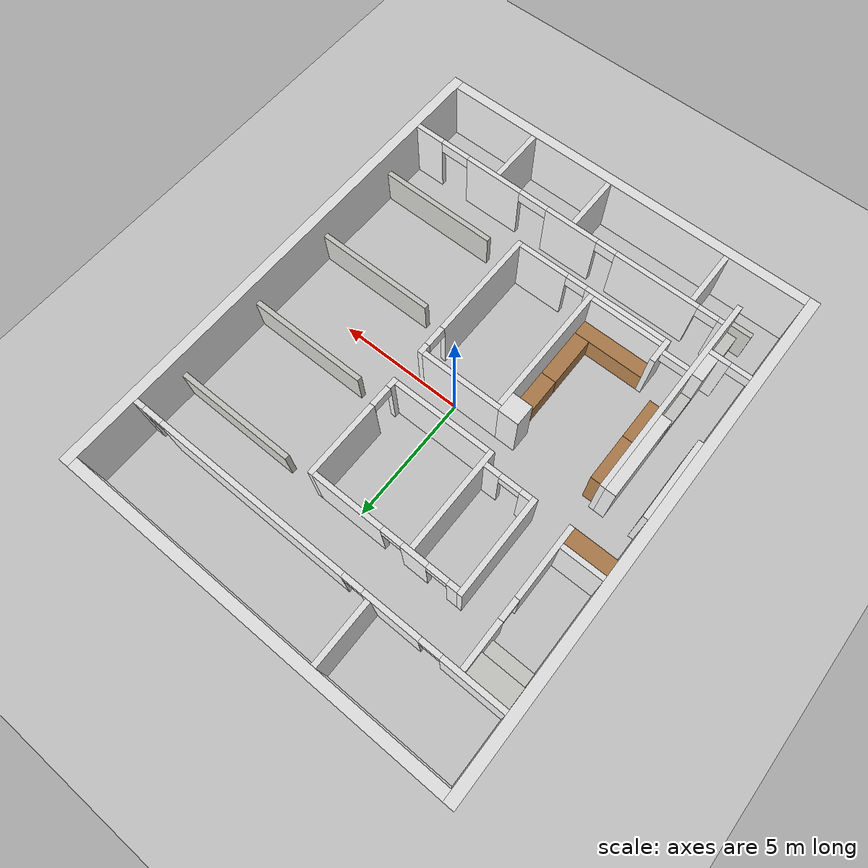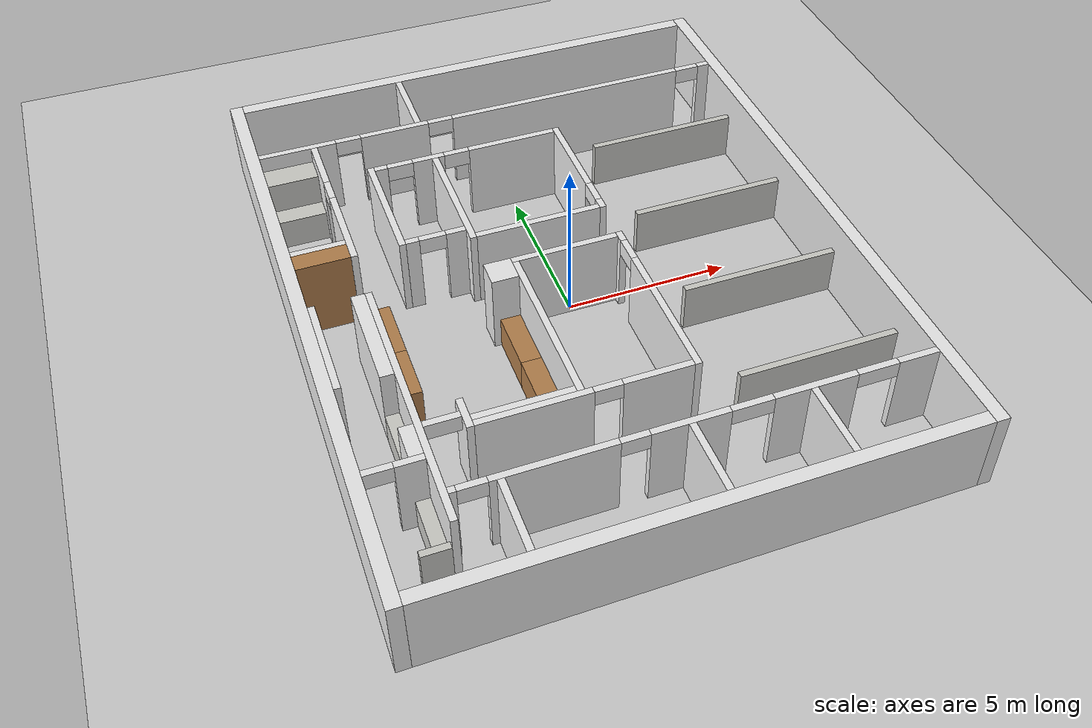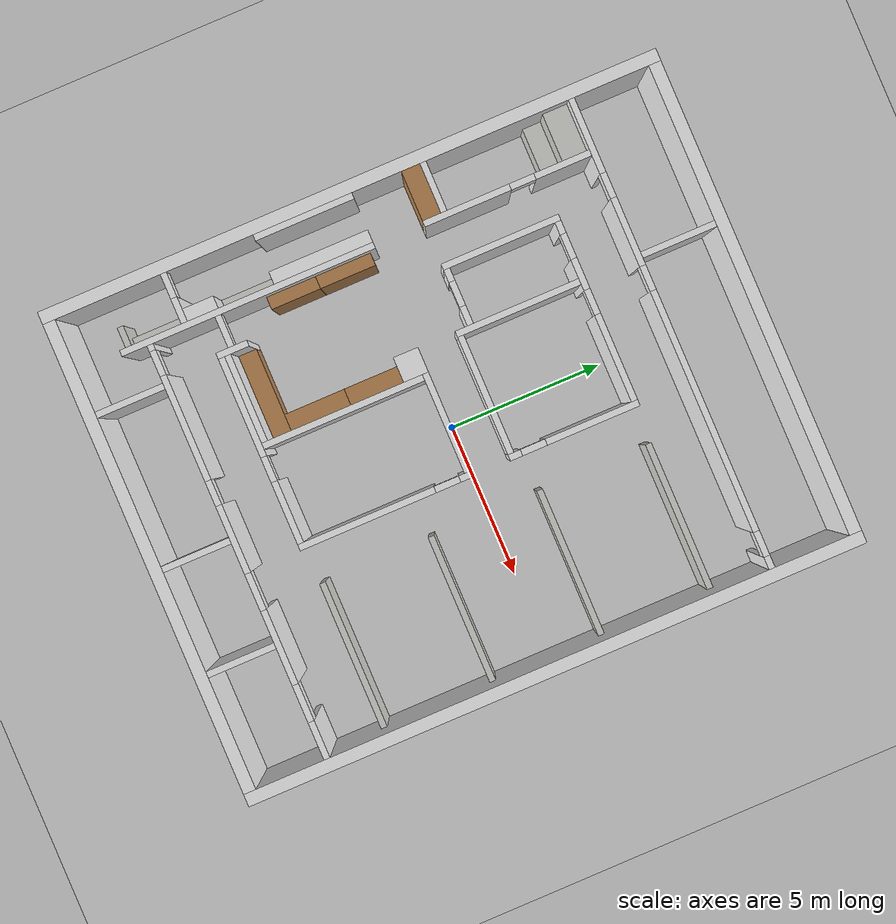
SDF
<sdf version="1.7">
 <world name="default">
  <light name="sun" type="directional">
   <pose>0 0 10 0 -0 0</pose>
   <diffuse>0.8 0.8 0.8 1</diffuse>
   <specular>0.2 0.2 0.2 1</specular>
   <attenuation>
    <range>1000</range>
    <constant>0.9</constant>
    <linear>0.01</linear>
    <quadratic>0.001</quadratic>
   </attenuation>
   <direction>-0.5 0.1 -0.9</direction>
   <spot><inner_angle>0</inner_angle><outer_angle>0</outer_angle><falloff>0</falloff></spot>
  </light>
  <model name="actor1_collision">
   <static>true</static>
   <link name="wall_link">
    <collision name="collision">
     <geometry><cylinder><radius>0.25</radius><length>2.0</length></cylinder></geometry>
    </collision>
    <visual name="visual">
     <geometry><cylinder><radius>0.25</radius><length>2.0</length></cylinder></geometry>
     <material>
      <ambient>1 0 0 1</ambient>
      <diffuse>1 0 0 1</diffuse>
      <specular>0 0 0 1</specular>
      <emissive>0 0 0 1</emissive>
     </material>
     <transparency>1</transparency>
    </visual>
    <inertial><mass>10.0</mass></inertial>
   </link>
  </model>
  <model name="actor2_collision">
   <static>true</static>
   <link name="wall_link">
    <collision name="collision">
     <geometry><cylinder><radius>0.25</radius><length>2.0</length></cylinder></geometry>
    </collision>
    <visual name="visual">
     <geometry><cylinder><radius>0.25</radius><length>2.0</length></cylinder></geometry>
     <material>
      <ambient>1 0 0 1</ambient>
      <diffuse>1 0 0 1</diffuse>
      <specular>0 0 0 1</specular>
      <emissive>0 0 0 1</emissive>
     </material>
     <transparency>1</transparency>
    </visual>
    <inertial><mass>10.0</mass></inertial>
   </link>
  </model>
  <model name="ground_plane">
   <static>1</static>
   <link name="link">
    <collision name="collision">
     <geometry><plane><normal>0 0 1</normal><size>100 100</size></plane></geometry>
     <surface><friction><ode><mu>100</mu><mu2>50</mu2></ode></friction></surface>
    </collision>
    <visual name="visual">
     <cast_shadows>0</cast_shadows>
     <geometry><plane><normal>0 0 1</normal><size>100 100</size></plane></geometry>
     <material>
      <script><uri>file://media/materials/scripts/gazebo.material</uri><name>Gazebo/Grey</name></script>
     </material>
    </visual>
   </link>
  </model>
  <gravity>0 0 -9.8</gravity>
  <magnetic_field>6e-06 2.3e-05 -4.2e-05</magnetic_field>
  <atmosphere type="adiabatic"/>
  <physics type="ode">
   <max_step_size>0.001</max_step_size>
   <real_time_factor>1</real_time_factor>
   <real_time_update_rate>1000</real_time_update_rate>
  </physics>
  <scene><ambient>0.4 0.4 0.4 1</ambient><background>0.7 0.7 0.7 1</background><shadows>1</shadows></scene>
  <audio><device>default</device></audio>
  <spherical_coordinates>
   <surface_model>EARTH_WGS84</surface_model>
   <latitude_deg>0</latitude_deg>
   <longitude_deg>0</longitude_deg>
   <elevation>0</elevation>
   <heading_deg>0</heading_deg>
  </spherical_coordinates>
  <model name="beta_map3">
   <link name="Wall_0">
    <pose>-7.8 0 0 0 -0 0</pose>
    <collision name="Wall_0_Collision">
     <pose>0 0 1.25 0 -0 0</pose>
     <geometry><box><size>0.4 20 2.5</size></box></geometry>
    </collision>
    <visual name="Wall_0_Visual">
     <pose>0 0 1.25 0 -0 0</pose>
     <geometry><box><size>0.4 20 2.5</size></box></geometry>
     <material>
      <script><uri>file://media/materials/scripts/gazebo.material</uri><name>Gazebo/White</name></script>
      <ambient>1 1 1 1</ambient>
     </material>
     <meta><layer>0</layer></meta>
    </visual>
   </link>
   <link name="Wall_1">
    <pose>0 9.8 0 0 -0 0</pose>
    <collision name="Wall_1_Collision">
     <pose>0 0 1.25 0 -0 0</pose>
     <geometry><box><size>15.2 0.4 2.5</size></box></geometry>
    </collision>
    <visual name="Wall_1_Visual">
     <pose>0 0 1.25 0 -0 0</pose>
     <geometry><box><size>15.2 0.4 2.5</size></box></geometry>
     <material>
      <script><uri>file://media/materials/scripts/gazebo.material</uri><name>Gazebo/White</name></script>
      <ambient>1 1 1 1</ambient>
     </material>
     <meta><layer>0</layer></meta>
    </visual>
   </link>
   <link name="Wall_2">
    <pose>7.8 0 0 0 -0 0</pose>
    <collision name="Wall_2_Collision">
     <pose>0 0 1.25 0 -0 0</pose>
     <geometry><box><size>0.4 20 2.5</size></box></geometry>
    </collision>
    <visual name="Wall_2_Visual">
     <pose>0 0 1.25 0 -0 0</pose>
     <geometry><box><size>0.4 20 2.5</size></box></geometry>
     <material>
      <script><uri>file://media/materials/scripts/gazebo.material</uri><name>Gazebo/White</name></script>
      <ambient>1 1 1 1</ambient>
     </material>
     <meta><layer>0</layer></meta>
    </visual>
   </link>
   <link name="Wall_3">
    <pose>0 -9.8 0 0 -0 0</pose>
    <collision name="Wall_3_Collision">
     <pose>0 0 1.25 0 -0 0</pose>
     <geometry><box><size>15.2 0.4 2.5</size></box></geometry>
    </collision>
    <visual name="Wall_3_Visual">
     <pose>0 0 1.25 0 -0 0</pose>
     <geometry><box><size>15.2 0.4 2.5</size></box></geometry>
     <material>
      <script><uri>file://media/materials/scripts/gazebo.material</uri><name>Gazebo/White</name></script>
      <ambient>1 1 1 1</ambient>
     </material>
     <meta><layer>0</layer></meta>
    </visual>
   </link>
   <link name="Wall_4">
    <pose>-7.5 -1.6 0 0 -0 0</pose>
    <collision name="Wall_4_Collision">
     <pose>0 0 1.25 0 -0 0</pose>
     <geometry><box><size>0.2 3.2 2.5</size></box></geometry>
    </collision>
    <visual name="Wall_4_Visual">
     <pose>0 0 1.25 0 -0 0</pose>
     <geometry><box><size>0.2 3.2 2.5</size></box></geometry>
     <material>
      <script><uri>file://media/materials/scripts/gazebo.material</uri><name>Gazebo/White</name></script>
      <ambient>1 1 1 1</ambient>
     </material>
     <meta><layer>0</layer></meta>
    </visual>
   </link>
   <link name="Wall_5">
    <pose>-5.9 -4.1 0 0 -0 0</pose>
    <collision name="Wall_5_Collision">
     <pose>0 0 1.25 0 -0 0</pose>
     <geometry><box><size>0.2 8.2 2.5</size></box></geometry>
    </collision>
    <visual name="Wall_5_Visual">
     <pose>0 0 1.25 0 -0 0</pose>
     <geometry><box><size>0.2 8.2 2.5</size></box></geometry>
     <material>
      <script><uri>file://media/materials/scripts/gazebo.material</uri><name>Gazebo/White</name></script>
      <ambient>1 1 1 1</ambient>
     </material>
     <meta><layer>0</layer></meta>
    </visual>
   </link>
   <link name="Wall_6">
    <pose>-5.7 -7.3 0 0 -0 0</pose>
    <collision name="Wall_6_Collision">
     <pose>0 0 1.25 0 -0 0</pose>
     <geometry><box><size>0.2 0.2 2.5</size></box></geometry>
    </collision>
    <visual name="Wall_6_Visual">
     <pose>0 0 1.25 0 -0 0</pose>
     <geometry><box><size>0.2 0.2 2.5</size></box></geometry>
     <material>
      <script><uri>file://media/materials/scripts/gazebo.material</uri><name>Gazebo/White</name></script>
      <ambient>1 1 1 1</ambient>
     </material>
     <meta><layer>0</layer></meta>
    </visual>
   </link>
   <link name="Wall_7">
    <pose>-3.1 -7.3 0 0 -0 0</pose>
    <collision name="Wall_7_Collision">
     <pose>0 0 1.25 0 -0 0</pose>
     <geometry><box><size>3.4 0.2 2.5</size></box></geometry>
    </collision>
    <visual name="Wall_7_Visual">
     <pose>0 0 1.25 0 -0 0</pose>
     <geometry><box><size>3.4 0.2 2.5</size></box></geometry>
     <material>
      <script><uri>file://media/materials/scripts/gazebo.material</uri><name>Gazebo/White</name></script>
      <ambient>1 1 1 1</ambient>
     </material>
     <meta><layer>0</layer></meta>
    </visual>
   </link>
   <link name="Wall_8">
    <pose>0.5 -7.3 0 0 -0 0</pose>
    <collision name="Wall_8_Collision">
     <pose>0 0 1.25 0 -0 0</pose>
     <geometry><box><size>2.2 0.2 2.5</size></box></geometry>
    </collision>
    <visual name="Wall_8_Visual">
     <pose>0 0 1.25 0 -0 0</pose>
     <geometry><box><size>2.2 0.2 2.5</size></box></geometry>
     <material>
      <script><uri>file://media/materials/scripts/gazebo.material</uri><name>Gazebo/White</name></script>
      <ambient>1 1 1 1</ambient>
     </material>
     <meta><layer>0</layer></meta>
    </visual>
   </link>
   <link name="Wall_9">
    <pose>4 -7.3 0 0 -0 0</pose>
    <collision name="Wall_9_Collision">
     <pose>0 0 1.25 0 -0 0</pose>
     <geometry><box><size>2.4 0.2 2.5</size></box></geometry>
    </collision>
    <visual name="Wall_9_Visual">
     <pose>0 0 1.25 0 -0 0</pose>
     <geometry><box><size>2.4 0.2 2.5</size></box></geometry>
     <material>
      <script><uri>file://media/materials/scripts/gazebo.material</uri><name>Gazebo/White</name></script>
      <ambient>1 1 1 1</ambient>
     </material>
     <meta><layer>0</layer></meta>
    </visual>
   </link>
   <link name="Wall_10">
    <pose>7 -7.3 0 0 -0 0</pose>
    <collision name="Wall_10_Collision">
     <pose>0 0 1.25 0 -0 0</pose>
     <geometry><box><size>1.2 0.2 2.5</size></box></geometry>
    </collision>
    <visual name="Wall_10_Visual">
     <pose>0 0 1.25 0 -0 0</pose>
     <geometry><box><size>1.2 0.2 2.5</size></box></geometry>
     <material>
      <script><uri>file://media/materials/scripts/gazebo.material</uri><name>Gazebo/White</name></script>
      <ambient>1 1 1 1</ambient>
     </material>
     <meta><layer>0</layer></meta>
    </visual>
   </link>
   <link name="Wall_11">
    <pose>3.9 -8.5 0 0 -0 0</pose>
    <collision name="Wall_11_Collision">
     <pose>0 0 1.25 0 -0 0</pose>
     <geometry><box><size>0.2 2.2 2.5</size></box></geometry>
    </collision>
    <visual name="Wall_11_Visual">
     <pose>0 0 1.25 0 -0 0</pose>
     <geometry><box><size>0.2 2.2 2.5</size></box></geometry>
     <material>
      <script><uri>file://media/materials/scripts/gazebo.material</uri><name>Gazebo/White</name></script>
      <ambient>1 1 1 1</ambient>
     </material>
     <meta><layer>0</layer></meta>
    </visual>
   </link>
   <link name="Wall_12">
    <pose>0.5 -8.5 0 0 -0 0</pose>
    <collision name="Wall_12_Collision">
     <pose>0 0 1.25 0 -0 0</pose>
     <geometry><box><size>0.2 2.2 2.5</size></box></geometry>
    </collision>
    <visual name="Wall_12_Visual">
     <pose>0 0 1.25 0 -0 0</pose>
     <geometry><box><size>0.2 2.2 2.5</size></box></geometry>
     <material>
      <script><uri>file://media/materials/scripts/gazebo.material</uri><name>Gazebo/White</name></script>
      <ambient>1 1 1 1</ambient>
     </material>
     <meta><layer>0</layer></meta>
    </visual>
   </link>
   <link name="Wall_13">
    <pose>-4.5 -8.5 0 0 -0 0</pose>
    <collision name="Wall_13_Collision">
     <pose>0 0 1.25 0 -0 0</pose>
     <geometry><box><size>0.2 2.2 2.5</size></box></geometry>
    </collision>
    <visual name="Wall_13_Visual">
     <pose>0 0 1.25 0 -0 0</pose>
     <geometry><box><size>0.2 2.2 2.5</size></box></geometry>
     <material>
      <script><uri>file://media/materials/scripts/gazebo.material</uri><name>Gazebo/White</name></script>
      <ambient>1 1 1 1</ambient>
     </material>
     <meta><layer>0</layer></meta>
    </visual>
   </link>
   <link name="Wall_14">
    <pose>-6.4 -8.1 0 0 -0 0</pose>
    <collision name="Wall_14_Collision">
     <pose>0 0 0.75 0 -0 0</pose>
     <geometry><box><size>0.8 0.2 1.5</size></box></geometry>
    </collision>
    <visual name="Wall_14_Visual">
     <pose>0 0 0.75 0 -0 0</pose>
     <geometry><box><size>0.8 0.2 1.5</size></box></geometry>
     <material>
      <script><uri>file://media/materials/scripts/gazebo.material</uri><name>Gazebo/CeilingTiled</name></script>
      <ambient>0.5 0.5 0.5 1</ambient>
     </material>
     <meta><layer>0</layer></meta>
    </visual>
   </link>
   <link name="Wall_15">
    <pose>-6.4 -6.1 0 0 -0 0</pose>
    <collision name="Wall_15_Collision">
     <pose>0 0 1.25 0 -0 0</pose>
     <geometry><box><size>0.8 0.2 2.5</size></box></geometry>
    </collision>
    <visual name="Wall_15_Visual">
     <pose>0 0 1.25 0 -0 0</pose>
     <geometry><box><size>0.8 0.2 2.5</size></box></geometry>
     <material>
      <script><uri>file://media/materials/scripts/gazebo.material</uri><name>Gazebo/White</name></script>
      <ambient>1 1 1 1</ambient>
     </material>
     <meta><layer>0</layer></meta>
    </visual>
   </link>
   <link name="Wall_16">
    <pose>-6.2 -7.1 0 0 -0 0</pose>
    <collision name="Wall_16_Collision">
     <pose>0 0 0.5 0 -0 0</pose>
     <geometry><box><size>0.4 1.8 1</size></box></geometry>
    </collision>
    <visual name="Wall_16_Visual">
     <pose>0 0 0.5 0 -0 0</pose>
     <geometry><box><size>0.4 1.8 1</size></box></geometry>
     <material>
      <script><uri>file://media/materials/scripts/gazebo.material</uri><name>Gazebo/CeilingTiled</name></script>
      <ambient>0.5 0.5 0.5 1</ambient>
     </material>
     <meta><layer>0</layer></meta>
    </visual>
   </link>
   <link name="Wall_17">
    <pose>-6.2 -4.1 0 0 -0 0</pose>
    <collision name="Wall_17_Collision">
     <pose>0 0 0.5 0 -0 0</pose>
     <geometry><box><size>0.4 1.8 1</size></box></geometry>
    </collision>
    <visual name="Wall_17_Visual">
     <pose>0 0 0.5 0 -0 0</pose>
     <geometry><box><size>0.4 1.8 1</size></box></geometry>
     <material>
      <script><uri>file://media/materials/scripts/gazebo.material</uri><name>Gazebo/CeilingTiled</name></script>
      <ambient>0.5 0.5 0.5 1</ambient>
     </material>
     <meta><layer>0</layer></meta>
    </visual>
   </link>
   <link name="Wall_18">
    <pose>-6.2 -5.5 0 0 -0 0</pose>
    <collision name="Wall_18_Collision">
     <pose>0 0 1.25 0 -0 0</pose>
     <geometry><box><size>0.4 1 2.5</size></box></geometry>
    </collision>
    <visual name="Wall_18_Visual">
     <pose>0 0 1.25 0 -0 0</pose>
     <geometry><box><size>0.4 1 2.5</size></box></geometry>
     <material>
      <script><uri>file://media/materials/scripts/gazebo.material</uri><name>Gazebo/White</name></script>
      <ambient>1 1 1 1</ambient>
     </material>
     <meta><layer>0</layer></meta>
    </visual>
   </link>
   <link name="Wall_19">
    <pose>-6.2 -1.6 0 0 -0 0</pose>
    <collision name="Wall_19_Collision">
     <pose>0 0 1.25 0 -0 0</pose>
     <geometry><box><size>0.4 3.2 2.5</size></box></geometry>
    </collision>
    <visual name="Wall_19_Visual">
     <pose>0 0 1.25 0 -0 0</pose>
     <geometry><box><size>0.4 3.2 2.5</size></box></geometry>
     <material>
      <script><uri>file://media/materials/scripts/gazebo.material</uri><name>Gazebo/White</name></script>
      <ambient>1 1 1 1</ambient>
     </material>
     <meta><layer>0</layer></meta>
    </visual>
   </link>
   <link name="Wall_20">
    <pose>-5.6 -1.1 0 0 -0 0</pose>
    <collision name="Wall_20_Collision">
     <pose>0 0 1 0 -0 0</pose>
     <geometry><box><size>0.4 1.8 2</size></box></geometry>
    </collision>
    <visual name="Wall_20_Visual">
     <pose>0 0 1 0 -0 0</pose>
     <geometry><box><size>0.4 1.8 2</size></box></geometry>
     <material>
      <script><uri>file://media/materials/scripts/gazebo.material</uri><name>Gazebo/WoodFloor</name></script>
      <ambient>0.5 0.5 0.5 1</ambient>
     </material>
     <meta><layer>0</layer></meta>
    </visual>
   </link>
   <link name="Wall_21">
    <pose>-5.6 -2.8 0 0 -0 0</pose>
    <collision name="Wall_21_Collision">
     <pose>0 0 1 0 -0 0</pose>
     <geometry><box><size>0.4 1.6 2</size></box></geometry>
    </collision>
    <visual name="Wall_21_Visual">
     <pose>0 0 1 0 -0 0</pose>
     <geometry><box><size>0.4 1.6 2</size></box></geometry>
     <material>
      <script><uri>file://media/materials/scripts/gazebo.material</uri><name>Gazebo/WoodFloor</name></script>
      <ambient>0.5 0.5 0.5 1</ambient>
     </material>
     <meta><layer>0</layer></meta>
    </visual>
   </link>
   <link name="Wall_22">
    <pose>-4.7 -5.1 0 0 -0 0</pose>
    <collision name="Wall_22_Collision">
     <pose>0 0 1.25 0 -0 0</pose>
     <geometry><box><size>0.2 1 2.5</size></box></geometry>
    </collision>
    <visual name="Wall_22_Visual">
     <pose>0 0 1.25 0 -0 0</pose>
     <geometry><box><size>0.2 1 2.5</size></box></geometry>
     <material>
      <script><uri>file://media/materials/scripts/gazebo.material</uri><name>Gazebo/White</name></script>
      <ambient>1 1 1 1</ambient>
     </material>
     <meta><layer>0</layer></meta>
    </visual>
   </link>
   <link name="Wall_23">
    <pose>-3 -5.5 0 0 -0 0</pose>
    <collision name="Wall_23_Collision">
     <pose>0 0 1.25 0 -0 0</pose>
     <geometry><box><size>3.2 0.2 2.5</size></box></geometry>
    </collision>
    <visual name="Wall_23_Visual">
     <pose>0 0 1.25 0 -0 0</pose>
     <geometry><box><size>3.2 0.2 2.5</size></box></geometry>
     <material>
      <script><uri>file://media/materials/scripts/gazebo.material</uri><name>Gazebo/White</name></script>
      <ambient>1 1 1 1</ambient>
     </material>
     <meta><layer>0</layer></meta>
    </visual>
   </link>
   <link name="Wall_24">
    <pose>-2.2 -0.4 0 0 -0 0</pose>
    <collision name="Wall_24_Collision">
     <pose>0 0 1.25 0 -0 0</pose>
     <geometry><box><size>0.8 0.8 2.5</size></box></geometry>
    </collision>
    <visual name="Wall_24_Visual">
     <pose>0 0 1.25 0 -0 0</pose>
     <geometry><box><size>0.8 0.8 2.5</size></box></geometry>
     <material>
      <script><uri>file://media/materials/scripts/gazebo.material</uri><name>Gazebo/White</name></script>
      <ambient>1 1 1 1</ambient>
     </material>
     <meta><layer>0</layer></meta>
    </visual>
   </link>
   <link name="Wall_25">
    <pose>-0.2 -0.1 0 0 -0 0</pose>
    <collision name="Wall_25_Collision">
     <pose>0 0 1.25 0 -0 0</pose>
     <geometry><box><size>3.2 0.2 2.5</size></box></geometry>
    </collision>
    <visual name="Wall_25_Visual">
     <pose>0 0 1.25 0 -0 0</pose>
     <geometry><box><size>3.2 0.2 2.5</size></box></geometry>
     <material>
      <script><uri>file://media/materials/scripts/gazebo.material</uri><name>Gazebo/White</name></script>
      <ambient>1 1 1 1</ambient>
     </material>
     <meta><layer>0</layer></meta>
    </visual>
   </link>
   <link name="Wall_26">
    <pose>1.5 -0.2 0 0 -0 0</pose>
    <collision name="Wall_26_Collision">
     <pose>0 0 1.25 0 -0 0</pose>
     <geometry><box><size>0.2 0.4 2.5</size></box></geometry>
    </collision>
    <visual name="Wall_26_Visual">
     <pose>0 0 1.25 0 -0 0</pose>
     <geometry><box><size>0.2 0.4 2.5</size></box></geometry>
     <material>
      <script><uri>file://media/materials/scripts/gazebo.material</uri><name>Gazebo/White</name></script>
      <ambient>1 1 1 1</ambient>
     </material>
     <meta><layer>0</layer></meta>
    </visual>
   </link>
   <link name="Wall_27">
    <pose>1.5 -3.4 0 0 -0 0</pose>
    <collision name="Wall_27_Collision">
     <pose>0 0 1.25 0 -0 0</pose>
     <geometry><box><size>0.2 4.4 2.5</size></box></geometry>
    </collision>
    <visual name="Wall_27_Visual">
     <pose>0 0 1.25 0 -0 0</pose>
     <geometry><box><size>0.2 4.4 2.5</size></box></geometry>
     <material>
      <script><uri>file://media/materials/scripts/gazebo.material</uri><name>Gazebo/White</name></script>
      <ambient>1 1 1 1</ambient>
     </material>
     <meta><layer>0</layer></meta>
    </visual>
   </link>
   <link name="Wall_28">
    <pose>0.4 -5.5 0 0 -0 0</pose>
    <collision name="Wall_28_Collision">
     <pose>0 0 1.25 0 -0 0</pose>
     <geometry><box><size>2 0.2 2.5</size></box></geometry>
    </collision>
    <visual name="Wall_28_Visual">
     <pose>0 0 1.25 0 -0 0</pose>
     <geometry><box><size>2 0.2 2.5</size></box></geometry>
     <material>
      <script><uri>file://media/materials/scripts/gazebo.material</uri><name>Gazebo/White</name></script>
      <ambient>1 1 1 1</ambient>
     </material>
     <meta><layer>0</layer></meta>
    </visual>
   </link>
   <link name="Wall_29">
    <pose>-1.7 -2.8 0 0 -0 0</pose>
    <collision name="Wall_29_Collision">
     <pose>0 0 1.25 0 -0 0</pose>
     <geometry><box><size>0.2 5.2 2.5</size></box></geometry>
    </collision>
    <visual name="Wall_29_Visual">
     <pose>0 0 1.25 0 -0 0</pose>
     <geometry><box><size>0.2 5.2 2.5</size></box></geometry>
     <material>
      <script><uri>file://media/materials/scripts/gazebo.material</uri><name>Gazebo/White</name></script>
      <ambient>1 1 1 1</ambient>
     </material>
     <meta><layer>0</layer></meta>
    </visual>
   </link>
   <link name="Wall_30">
    <pose>-3.2 -5.3 0 0 -0 0</pose>
    <collision name="Wall_30_Collision">
     <pose>0 0 1.25 0 -0 0</pose>
     <geometry><box><size>2.8 0.2 2.5</size></box></geometry>
    </collision>
    <visual name="Wall_30_Visual">
     <pose>0 0 1.25 0 -0 0</pose>
     <geometry><box><size>2.8 0.2 2.5</size></box></geometry>
     <material>
      <script><uri>file://media/materials/scripts/gazebo.material</uri><name>Gazebo/White</name></script>
      <ambient>1 1 1 1</ambient>
     </material>
     <meta><layer>0</layer></meta>
    </visual>
   </link>
   <link name="Wall_31">
    <pose>-3.2 -4.9 0 0 -0 0</pose>
    <collision name="Wall_31_Collision">
     <pose>0 0 0.5 0 -0 0</pose>
     <geometry><box><size>2.8 0.6 1</size></box></geometry>
    </collision>
    <visual name="Wall_31_Visual">
     <pose>0 0 0.5 0 -0 0</pose>
     <geometry><box><size>2.8 0.6 1</size></box></geometry>
     <material>
      <script><uri>file://media/materials/scripts/gazebo.material</uri><name>Gazebo/WoodFloor</name></script>
      <ambient>0.5 0.5 0.5 1</ambient>
     </material>
     <meta><layer>0</layer></meta>
    </visual>
   </link>
   <link name="Wall_32">
    <pose>-5.9 3 0 0 -0 0</pose>
    <collision name="Wall_32_Collision">
     <pose>0 0 1.25 0 -0 0</pose>
     <geometry><box><size>0.2 2.8 2.5</size></box></geometry>
    </collision>
    <visual name="Wall_32_Visual">
     <pose>0 0 1.25 0 -0 0</pose>
     <geometry><box><size>0.2 2.8 2.5</size></box></geometry>
     <material>
      <script><uri>file://media/materials/scripts/gazebo.material</uri><name>Gazebo/White</name></script>
      <ambient>1 1 1 1</ambient>
     </material>
     <meta><layer>0</layer></meta>
    </visual>
   </link>
   <link name="Wall_33">
    <pose>-6.8 2.3 0 0 -0 0</pose>
    <collision name="Wall_33_Collision">
     <pose>0 0 1.25 0 -0 0</pose>
     <geometry><box><size>1.6 0.2 2.5</size></box></geometry>
    </collision>
    <visual name="Wall_33_Visual">
     <pose>0 0 1.25 0 -0 0</pose>
     <geometry><box><size>1.6 0.2 2.5</size></box></geometry>
     <material>
      <script><uri>file://media/materials/scripts/gazebo.material</uri><name>Gazebo/White</name></script>
      <ambient>1 1 1 1</ambient>
     </material>
     <meta><layer>0</layer></meta>
    </visual>
   </link>
   <link name="Wall_34">
    <pose>-5.9 6.1 0 0 -0 0</pose>
    <collision name="Wall_34_Collision">
     <pose>0 0 1.25 0 -0 0</pose>
     <geometry><box><size>0.2 1.8 2.5</size></box></geometry>
    </collision>
    <visual name="Wall_34_Visual">
     <pose>0 0 1.25 0 -0 0</pose>
     <geometry><box><size>0.2 1.8 2.5</size></box></geometry>
     <material>
      <script><uri>file://media/materials/scripts/gazebo.material</uri><name>Gazebo/White</name></script>
      <ambient>1 1 1 1</ambient>
     </material>
     <meta><layer>0</layer></meta>
    </visual>
   </link>
   <link name="Wall_35">
    <pose>-6.4 7.1 0 0 -0 0</pose>
    <collision name="Wall_35_Collision">
     <pose>0 0 1.25 0 -0 0</pose>
     <geometry><box><size>2.4 0.2 2.5</size></box></geometry>
    </collision>
    <visual name="Wall_35_Visual">
     <pose>0 0 1.25 0 -0 0</pose>
     <geometry><box><size>2.4 0.2 2.5</size></box></geometry>
     <material>
      <script><uri>file://media/materials/scripts/gazebo.material</uri><name>Gazebo/White</name></script>
      <ambient>1 1 1 1</ambient>
     </material>
     <meta><layer>0</layer></meta>
    </visual>
   </link>
   <link name="Wall_36">
    <pose>-6.8 5.9 0 0 -0 0</pose>
    <collision name="Wall_36_Collision">
     <pose>0 0 0.5 0 -0 0</pose>
     <geometry><box><size>1.6 0.6 1</size></box></geometry>
    </collision>
    <visual name="Wall_36_Visual">
     <pose>0 0 0.5 0 -0 0</pose>
     <geometry><box><size>1.6 0.6 1</size></box></geometry>
     <material>
      <script><uri>file://media/materials/scripts/gazebo.material</uri><name>Gazebo/CeilingTiled</name></script>
      <ambient>0.5 0.5 0.5 1</ambient>
     </material>
     <meta><layer>0</layer></meta>
    </visual>
   </link>
   <link name="Wall_37">
    <pose>-6.8 6.6 0 0 -0 0</pose>
    <collision name="Wall_37_Collision">
     <pose>0 0 1 0 -0 0</pose>
     <geometry><box><size>1.6 0.8 2</size></box></geometry>
    </collision>
    <visual name="Wall_37_Visual">
     <pose>0 0 1 0 -0 0</pose>
     <geometry><box><size>1.6 0.8 2</size></box></geometry>
     <material>
      <script><uri>file://media/materials/scripts/gazebo.material</uri><name>Gazebo/CeilingTiled</name></script>
      <ambient>0.5 0.5 0.5 1</ambient>
     </material>
     <meta><layer>0</layer></meta>
    </visual>
   </link>
   <link name="Wall_38">
    <pose>-3.3 7.1 0 0 -0 0</pose>
    <collision name="Wall_38_Collision">
     <pose>0 0 1.25 0 -0 0</pose>
     <geometry><box><size>2.2 0.2 2.5</size></box></geometry>
    </collision>
    <visual name="Wall_38_Visual">
     <pose>0 0 1.25 0 -0 0</pose>
     <geometry><box><size>2.2 0.2 2.5</size></box></geometry>
     <material>
      <script><uri>file://media/materials/scripts/gazebo.material</uri><name>Gazebo/White</name></script>
      <ambient>1 1 1 1</ambient>
     </material>
     <meta><layer>0</layer></meta>
    </visual>
   </link>
   <link name="Wall_39">
    <pose>-2.5 8.4 0 0 -0 0</pose>
    <collision name="Wall_39_Collision">
     <pose>0 0 1.25 0 -0 0</pose>
     <geometry><box><size>0.2 2.4 2.5</size></box></geometry>
    </collision>
    <visual name="Wall_39_Visual">
     <pose>0 0 1.25 0 -0 0</pose>
     <geometry><box><size>0.2 2.4 2.5</size></box></geometry>
     <material>
      <script><uri>file://media/materials/scripts/gazebo.material</uri><name>Gazebo/White</name></script>
      <ambient>1 1 1 1</ambient>
     </material>
     <meta><layer>0</layer></meta>
    </visual>
   </link>
   <link name="Wall_40">
    <pose>2.5 7.1 0 0 -0 0</pose>
    <collision name="Wall_40_Collision">
     <pose>0 0 1.25 0 -0 0</pose>
     <geometry><box><size>7.8 0.2 2.5</size></box></geometry>
    </collision>
    <visual name="Wall_40_Visual">
     <pose>0 0 1.25 0 -0 0</pose>
     <geometry><box><size>7.8 0.2 2.5</size></box></geometry>
     <material>
      <script><uri>file://media/materials/scripts/gazebo.material</uri><name>Gazebo/White</name></script>
      <ambient>1 1 1 1</ambient>
     </material>
     <meta><layer>0</layer></meta>
    </visual>
   </link>
   <link name="Wall_41">
    <pose>7.4 7.1 0 0 -0 0</pose>
    <collision name="Wall_41_Collision">
     <pose>0 0 1.25 0 -0 0</pose>
     <geometry><box><size>0.4 0.2 2.5</size></box></geometry>
    </collision>
    <visual name="Wall_41_Visual">
     <pose>0 0 1.25 0 -0 0</pose>
     <geometry><box><size>0.4 0.2 2.5</size></box></geometry>
     <material>
      <script><uri>file://media/materials/scripts/gazebo.material</uri><name>Gazebo/White</name></script>
      <ambient>1 1 1 1</ambient>
     </material>
     <meta><layer>0</layer></meta>
    </visual>
   </link>
   <link name="Wall_42">
    <pose>5.2 5.3 0 0 -0 0</pose>
    <collision name="Wall_42_Collision">
     <pose>0 0 0.75 0 -0 0</pose>
     <geometry><box><size>4.8 0.2 1.5</size></box></geometry>
    </collision>
    <visual name="Wall_42_Visual">
     <pose>0 0 0.75 0 -0 0</pose>
     <geometry><box><size>4.8 0.2 1.5</size></box></geometry>
     <material>
      <script><uri>file://media/materials/scripts/gazebo.material</uri><name>Gazebo/CeilingTiled</name></script>
      <ambient>0.5 0.5 0.5 1</ambient>
     </material>
     <meta><layer>0</layer></meta>
    </visual>
   </link>
   <link name="Wall_43">
    <pose>5.2 1.7 0 0 -0 0</pose>
    <collision name="Wall_43_Collision">
     <pose>0 0 0.75 0 -0 0</pose>
     <geometry><box><size>4.8 0.2 1.5</size></box></geometry>
    </collision>
    <visual name="Wall_43_Visual">
     <pose>0 0 0.75 0 -0 0</pose>
     <geometry><box><size>4.8 0.2 1.5</size></box></geometry>
     <material>
      <script><uri>file://media/materials/scripts/gazebo.material</uri><name>Gazebo/CeilingTiled</name></script>
      <ambient>0.5 0.5 0.5 1</ambient>
     </material>
     <meta><layer>0</layer></meta>
    </visual>
   </link>
   <link name="Wall_44">
    <pose>5.2 -1.9 0 0 -0 0</pose>
    <collision name="Wall_44_Collision">
     <pose>0 0 0.75 0 -0 0</pose>
     <geometry><box><size>4.8 0.2 1.5</size></box></geometry>
    </collision>
    <visual name="Wall_44_Visual">
     <pose>0 0 0.75 0 -0 0</pose>
     <geometry><box><size>4.8 0.2 1.5</size></box></geometry>
     <material>
      <script><uri>file://media/materials/scripts/gazebo.material</uri><name>Gazebo/CeilingTiled</name></script>
      <ambient>0.5 0.5 0.5 1</ambient>
     </material>
     <meta><layer>0</layer></meta>
    </visual>
   </link>
   <link name="Wall_45">
    <pose>5.2 -5.5 0 0 -0 0</pose>
    <collision name="Wall_45_Collision">
     <pose>0 0 0.75 0 -0 0</pose>
     <geometry><box><size>4.8 0.2 1.5</size></box></geometry>
    </collision>
    <visual name="Wall_45_Visual">
     <pose>0 0 0.75 0 -0 0</pose>
     <geometry><box><size>4.8 0.2 1.5</size></box></geometry>
     <material>
      <script><uri>file://media/materials/scripts/gazebo.material</uri><name>Gazebo/CeilingTiled</name></script>
      <ambient>0.5 0.5 0.5 1</ambient>
     </material>
     <meta><layer>0</layer></meta>
    </visual>
   </link>
   <link name="Wall_46">
    <pose>1.5 1.4 0 0 -0 0</pose>
    <collision name="Wall_46_Collision">
     <pose>0 0 1.25 0 -0 0</pose>
     <geometry><box><size>0.2 0.4 2.5</size></box></geometry>
    </collision>
    <visual name="Wall_46_Visual">
     <pose>0 0 1.25 0 -0 0</pose>
     <geometry><box><size>0.2 0.4 2.5</size></box></geometry>
     <material>
      <script><uri>file://media/materials/scripts/gazebo.material</uri><name>Gazebo/White</name></script>
      <ambient>1 1 1 1</ambient>
     </material>
     <meta><layer>0</layer></meta>
    </visual>
   </link>
   <link name="Wall_47">
    <pose>-0.5 1.3 0 0 -0 0</pose>
    <collision name="Wall_47_Collision">
     <pose>0 0 1.25 0 -0 0</pose>
     <geometry><box><size>3.8 0.2 2.5</size></box></geometry>
    </collision>
    <visual name="Wall_47_Visual">
     <pose>0 0 1.25 0 -0 0</pose>
     <geometry><box><size>3.8 0.2 2.5</size></box></geometry>
     <material>
      <script><uri>file://media/materials/scripts/gazebo.material</uri><name>Gazebo/White</name></script>
      <ambient>1 1 1 1</ambient>
     </material>
     <meta><layer>0</layer></meta>
    </visual>
   </link>
   <link name="Wall_48">
    <pose>1.5 3.9 0 0 -0 0</pose>
    <collision name="Wall_48_Collision">
     <pose>0 0 1.25 0 -0 0</pose>
     <geometry><box><size>0.2 3 2.5</size></box></geometry>
    </collision>
    <visual name="Wall_48_Visual">
     <pose>0 0 1.25 0 -0 0</pose>
     <geometry><box><size>0.2 3 2.5</size></box></geometry>
     <material>
      <script><uri>file://media/materials/scripts/gazebo.material</uri><name>Gazebo/White</name></script>
      <ambient>1 1 1 1</ambient>
     </material>
     <meta><layer>0</layer></meta>
    </visual>
   </link>
   <link name="Wall_49">
    <pose>0 5.3 0 0 -0 0</pose>
    <collision name="Wall_49_Collision">
     <pose>0 0 1.25 0 -0 0</pose>
     <geometry><box><size>2.8 0.2 2.5</size></box></geometry>
    </collision>
    <visual name="Wall_49_Visual">
     <pose>0 0 1.25 0 -0 0</pose>
     <geometry><box><size>2.8 0.2 2.5</size></box></geometry>
     <material>
      <script><uri>file://media/materials/scripts/gazebo.material</uri><name>Gazebo/White</name></script>
      <ambient>1 1 1 1</ambient>
     </material>
     <meta><layer>0</layer></meta>
    </visual>
   </link>
   <link name="Wall_50">
    <pose>-2.7 5.3 0 0 -0 0</pose>
    <collision name="Wall_50_Collision">
     <pose>0 0 1.25 0 -0 0</pose>
     <geometry><box><size>1 0.2 2.5</size></box></geometry>
    </collision>
    <visual name="Wall_50_Visual">
     <pose>0 0 1.25 0 -0 0</pose>
     <geometry><box><size>1 0.2 2.5</size></box></geometry>
     <material>
      <script><uri>file://media/materials/scripts/gazebo.material</uri><name>Gazebo/White</name></script>
      <ambient>1 1 1 1</ambient>
     </material>
     <meta><layer>0</layer></meta>
    </visual>
   </link>
   <link name="Wall_51">
    <pose>-4.2 5.3 0 0 -0 0</pose>
    <collision name="Wall_51_Collision">
     <pose>0 0 1.25 0 -0 0</pose>
     <geometry><box><size>0.4 0.2 2.5</size></box></geometry>
    </collision>
    <visual name="Wall_51_Visual">
     <pose>0 0 1.25 0 -0 0</pose>
     <geometry><box><size>0.4 0.2 2.5</size></box></geometry>
     <material>
      <script><uri>file://media/materials/scripts/gazebo.material</uri><name>Gazebo/White</name></script>
      <ambient>1 1 1 1</ambient>
     </material>
     <meta><layer>0</layer></meta>
    </visual>
   </link>
   <link name="Wall_52">
    <pose>-4.5 3.5 0 0 -0 0</pose>
    <collision name="Wall_52_Collision">
     <pose>0 0 1.25 0 -0 0</pose>
     <geometry><box><size>0.2 3.8 2.5</size></box></geometry>
    </collision>
    <visual name="Wall_52_Visual">
     <pose>0 0 1.25 0 -0 0</pose>
     <geometry><box><size>0.2 3.8 2.5</size></box></geometry>
     <material>
      <script><uri>file://media/materials/scripts/gazebo.material</uri><name>Gazebo/White</name></script>
      <ambient>1 1 1 1</ambient>
     </material>
     <meta><layer>0</layer></meta>
    </visual>
   </link>
   <link name="Wall_53">
    <pose>-4.2 1.7 0 0 -0 0</pose>
    <collision name="Wall_53_Collision">
     <pose>0 0 1.25 0 -0 0</pose>
     <geometry><box><size>0.4 0.2 2.5</size></box></geometry>
    </collision>
    <visual name="Wall_53_Visual">
     <pose>0 0 1.25 0 -0 0</pose>
     <geometry><box><size>0.4 0.2 2.5</size></box></geometry>
     <material>
      <script><uri>file://media/materials/scripts/gazebo.material</uri><name>Gazebo/White</name></script>
      <ambient>1 1 1 1</ambient>
     </material>
     <meta><layer>0</layer></meta>
    </visual>
   </link>
   <link name="Wall_54">
    <pose>-2.9 1.7 0 0 -0 0</pose>
    <collision name="Wall_54_Collision">
     <pose>0 0 1.25 0 -0 0</pose>
     <geometry><box><size>0.6 0.2 2.5</size></box></geometry>
    </collision>
    <visual name="Wall_54_Visual">
     <pose>0 0 1.25 0 -0 0</pose>
     <geometry><box><size>0.6 0.2 2.5</size></box></geometry>
     <material>
      <script><uri>file://media/materials/scripts/gazebo.material</uri><name>Gazebo/White</name></script>
      <ambient>1 1 1 1</ambient>
     </material>
     <meta><layer>0</layer></meta>
    </visual>
   </link>
   <link name="Wall_55">
    <pose>-2.5 3.2 0 0 -0 0</pose>
    <collision name="Wall_55_Collision">
     <pose>0 0 1.25 0 -0 0</pose>
     <geometry><box><size>0.2 4 2.5</size></box></geometry>
    </collision>
    <visual name="Wall_55_Visual">
     <pose>0 0 1.25 0 -0 0</pose>
     <geometry><box><size>0.2 4 2.5</size></box></geometry>
     <material>
      <script><uri>file://media/materials/scripts/gazebo.material</uri><name>Gazebo/White</name></script>
      <ambient>1 1 1 1</ambient>
     </material>
     <meta><layer>0</layer></meta>
    </visual>
   </link>
   <link name="Wall_56">
    <pose>-2.1 -3.6 0 0 -0 0</pose>
    <collision name="Wall_56_Collision">
     <pose>0 0 0.5 0 -0 0</pose>
     <geometry><box><size>0.6 2 1</size></box></geometry>
    </collision>
    <visual name="Wall_56_Visual">
     <pose>0 0 0.5 0 -0 0</pose>
     <geometry><box><size>0.6 2 1</size></box></geometry>
     <material>
      <script><uri>file://media/materials/scripts/gazebo.material</uri><name>Gazebo/WoodFloor</name></script>
      <ambient>0.5 0.5 0.5 1</ambient>
     </material>
     <meta><layer>0</layer></meta>
    </visual>
   </link>
   <link name="Wall_57">
    <pose>-2.1 -1.7 0 0 -0 0</pose>
    <collision name="Wall_57_Collision">
     <pose>0 0 0.5 0 -0 0</pose>
     <geometry><box><size>0.6 1.8 1</size></box></geometry>
    </collision>
    <visual name="Wall_57_Visual">
     <pose>0 0 0.5 0 -0 0</pose>
     <geometry><box><size>0.6 1.8 1</size></box></geometry>
     <material>
      <script><uri>file://media/materials/scripts/gazebo.material</uri><name>Gazebo/WoodFloor</name></script>
      <ambient>0.5 0.5 0.5 1</ambient>
     </material>
     <meta><layer>0</layer></meta>
    </visual>
   </link>
   <link name="Wall_58">
    <pose>-6.8 1.9 0 0 -0 0</pose>
    <collision name="Wall_58_Collision">
     <pose>0 0 1.25 0 -0 0</pose>
     <geometry><box><size>1.6 0.6 2.5</size></box></geometry>
    </collision>
    <visual name="Wall_58_Visual">
     <pose>0 0 1.25 0 -0 0</pose>
     <geometry><box><size>1.6 0.6 2.5</size></box></geometry>
     <material>
      <script><uri>file://media/materials/scripts/gazebo.material</uri><name>Gazebo/Wood</name></script>
      <ambient>1 1 1 1</ambient>
     </material>
     <meta><layer>0</layer></meta>
    </visual>
   </link>
   <link name="Doorway_0">
    <pose>-5.2 -7.3 0 0 -0 0</pose>
    <collision name="Doorway_0_Collision">
     <pose>0 0 2.25 0 -0 0</pose>
     <geometry><box><size>0.8 0.2 0.5</size></box></geometry>
    </collision>
    <visual name="Doorway_0_Visual">
     <pose>0 0 2.25 0 -0 0</pose>
     <geometry><box><size>0.8 0.2 0.5</size></box></geometry>
     <material>
      <script><uri>file://media/materials/scripts/gazebo.material</uri><name>Gazebo/White</name></script>
      <ambient>1 1 1 1</ambient>
     </material>
     <meta><layer>0</layer></meta>
    </visual>
   </link>
   <link name="Doorway_1">
    <pose>-1 -7.3 0 0 -0 0</pose>
    <collision name="Doorway_1_Collision">
     <pose>0 0 2.25 0 -0 0</pose>
     <geometry><box><size>0.8 0.2 0.5</size></box></geometry>
    </collision>
    <visual name="Doorway_1_Visual">
     <pose>0 0 2.25 0 -0 0</pose>
     <geometry><box><size>0.8 0.2 0.5</size></box></geometry>
     <material>
      <script><uri>file://media/materials/scripts/gazebo.material</uri><name>Gazebo/White</name></script>
      <ambient>1 1 1 1</ambient>
     </material>
     <meta><layer>0</layer></meta>
    </visual>
   </link>
   <link name="Doorway_2">
    <pose>2.2 -7.3 0 0 -0 0</pose>
    <collision name="Doorway_2_Collision">
     <pose>0 0 2.25 0 -0 0</pose>
     <geometry><box><size>1.2 0.2 0.5</size></box></geometry>
    </collision>
    <visual name="Doorway_2_Visual">
     <pose>0 0 2.25 0 -0 0</pose>
     <geometry><box><size>1.2 0.2 0.5</size></box></geometry>
     <material>
      <script><uri>file://media/materials/scripts/gazebo.material</uri><name>Gazebo/White</name></script>
      <ambient>1 1 1 1</ambient>
     </material>
     <meta><layer>0</layer></meta>
    </visual>
   </link>
   <link name="Doorway_3">
    <pose>5.8 -7.3 0 0 -0 0</pose>
    <collision name="Doorway_3_Collision">
     <pose>0 0 2.25 0 -0 0</pose>
     <geometry><box><size>1.2 0.2 0.5</size></box></geometry>
    </collision>
    <visual name="Doorway_3_Visual">
     <pose>0 0 2.25 0 -0 0</pose>
     <geometry><box><size>1.2 0.2 0.5</size></box></geometry>
     <material>
      <script><uri>file://media/materials/scripts/gazebo.material</uri><name>Gazebo/White</name></script>
      <ambient>1 1 1 1</ambient>
     </material>
     <meta><layer>0</layer></meta>
    </visual>
   </link>
   <link name="Doorway_4">
    <pose>1.5 -0.8 0 0 -0 0</pose>
    <collision name="Doorway_4_Collision">
     <pose>0 0 2.25 0 -0 0</pose>
     <geometry><box><size>0.2 0.8 0.5</size></box></geometry>
    </collision>
    <visual name="Doorway_4_Visual">
     <pose>0 0 2.25 0 -0 0</pose>
     <geometry><box><size>0.2 0.8 0.5</size></box></geometry>
     <material>
      <script><uri>file://media/materials/scripts/gazebo.material</uri><name>Gazebo/White</name></script>
      <ambient>1 1 1 1</ambient>
     </material>
     <meta><layer>0</layer></meta>
    </visual>
   </link>
   <link name="Doorway_5">
    <pose>-1 -5.5 0 0 -0 0</pose>
    <collision name="Doorway_5_Collision">
     <pose>0 0 2.25 0 -0 0</pose>
     <geometry><box><size>0.8 0.2 0.5</size></box></geometry>
    </collision>
    <visual name="Doorway_5_Visual">
     <pose>0 0 2.25 0 -0 0</pose>
     <geometry><box><size>0.8 0.2 0.5</size></box></geometry>
     <material>
      <script><uri>file://media/materials/scripts/gazebo.material</uri><name>Gazebo/White</name></script>
      <ambient>1 1 1 1</ambient>
     </material>
     <meta><layer>0</layer></meta>
    </visual>
   </link>
   <link name="Doorway_6">
    <pose>-7.2 -6.1 0 0 -0 0</pose>
    <collision name="Doorway_6_Collision">
     <pose>0 0 2.25 0 -0 0</pose>
     <geometry><box><size>0.8 0.2 0.5</size></box></geometry>
    </collision>
    <visual name="Doorway_6_Visual">
     <pose>0 0 2.25 0 -0 0</pose>
     <geometry><box><size>0.8 0.2 0.5</size></box></geometry>
     <material>
      <script><uri>file://media/materials/scripts/gazebo.material</uri><name>Gazebo/White</name></script>
      <ambient>1 1 1 1</ambient>
     </material>
     <meta><layer>0</layer></meta>
    </visual>
   </link>
   <link name="Doorway_7">
    <pose>-5.3 -5.1 0 0 -0 0</pose>
    <collision name="Doorway_7_Collision">
     <pose>0 0 2.25 0 -0 0</pose>
     <geometry><box><size>1 0.2 0.5</size></box></geometry>
    </collision>
    <visual name="Doorway_7_Visual">
     <pose>0 0 2.25 0 -0 0</pose>
     <geometry><box><size>1 0.2 0.5</size></box></geometry>
     <material>
      <script><uri>file://media/materials/scripts/gazebo.material</uri><name>Gazebo/White</name></script>
      <ambient>1 1 1 1</ambient>
     </material>
     <meta><layer>0</layer></meta>
    </visual>
   </link>
   <link name="Doorway_8">
    <pose>-3.6 5.3 0 0 -0 0</pose>
    <collision name="Doorway_8_Collision">
     <pose>0 0 2.25 0 -0 0</pose>
     <geometry><box><size>0.8 0.2 0.5</size></box></geometry>
    </collision>
    <visual name="Doorway_8_Visual">
     <pose>0 0 2.25 0 -0 0</pose>
     <geometry><box><size>0.8 0.2 0.5</size></box></geometry>
     <material>
      <script><uri>file://media/materials/scripts/gazebo.material</uri><name>Gazebo/White</name></script>
      <ambient>1 1 1 1</ambient>
     </material>
     <meta><layer>0</layer></meta>
    </visual>
   </link>
   <link name="Doorway_9">
    <pose>-3.6 1.7 0 0 -0 0</pose>
    <collision name="Doorway_9_Collision">
     <pose>0 0 2.25 0 -0 0</pose>
     <geometry><box><size>0.8 0.2 0.5</size></box></geometry>
    </collision>
    <visual name="Doorway_9_Visual">
     <pose>0 0 2.25 0 -0 0</pose>
     <geometry><box><size>0.8 0.2 0.5</size></box></geometry>
     <material>
      <script><uri>file://media/materials/scripts/gazebo.material</uri><name>Gazebo/White</name></script>
      <ambient>1 1 1 1</ambient>
     </material>
     <meta><layer>0</layer></meta>
    </visual>
   </link>
   <link name="Doorway_10">
    <pose>1.5 2 0 0 -0 0</pose>
    <collision name="Doorway_10_Collision">
     <pose>0 0 2.25 0 -0 0</pose>
     <geometry><box><size>0.2 0.8 0.5</size></box></geometry>
    </collision>
    <visual name="Doorway_10_Visual">
     <pose>0 0 2.25 0 -0 0</pose>
     <geometry><box><size>0.2 0.8 0.5</size></box></geometry>
     <material>
      <script><uri>file://media/materials/scripts/gazebo.material</uri><name>Gazebo/White</name></script>
      <ambient>1 1 1 1</ambient>
     </material>
     <meta><layer>0</layer></meta>
    </visual>
   </link>
   <link name="Doorway_11">
    <pose>-1.8 5.3 0 0 -0 0</pose>
    <collision name="Doorway_11_Collision">
     <pose>0 0 2.25 0 -0 0</pose>
     <geometry><box><size>0.8 0.2 0.5</size></box></geometry>
    </collision>
    <visual name="Doorway_11_Visual">
     <pose>0 0 2.25 0 -0 0</pose>
     <geometry><box><size>0.8 0.2 0.5</size></box></geometry>
     <material>
      <script><uri>file://media/materials/scripts/gazebo.material</uri><name>Gazebo/White</name></script>
      <ambient>1 1 1 1</ambient>
     </material>
     <meta><layer>0</layer></meta>
    </visual>
   </link>
   <link name="Doorway_12">
    <pose>-5.9 4.8 0 0 -0 0</pose>
    <collision name="Doorway_12_Collision">
     <pose>0 0 2.25 0 -0 0</pose>
     <geometry><box><size>0.2 0.8 0.5</size></box></geometry>
    </collision>
    <visual name="Doorway_12_Visual">
     <pose>0 0 2.25 0 -0 0</pose>
     <geometry><box><size>0.2 0.8 0.5</size></box></geometry>
     <material>
      <script><uri>file://media/materials/scripts/gazebo.material</uri><name>Gazebo/White</name></script>
      <ambient>1 1 1 1</ambient>
     </material>
     <meta><layer>0</layer></meta>
    </visual>
   </link>
   <link name="Doorway_13">
    <pose>-4.8 7.1 0 0 -0 0</pose>
    <collision name="Doorway_13_Collision">
     <pose>0 0 2.25 0 -0 0</pose>
     <geometry><box><size>0.8 0.2 0.5</size></box></geometry>
    </collision>
    <visual name="Doorway_13_Visual">
     <pose>0 0 2.25 0 -0 0</pose>
     <geometry><box><size>0.8 0.2 0.5</size></box></geometry>
     <material>
      <script><uri>file://media/materials/scripts/gazebo.material</uri><name>Gazebo/White</name></script>
      <ambient>1 1 1 1</ambient>
     </material>
     <meta><layer>0</layer></meta>
    </visual>
   </link>
   <link name="Doorway_14">
    <pose>-1.8 7.1 0 0 -0 0</pose>
    <collision name="Doorway_14_Collision">
     <pose>0 0 2.25 0 -0 0</pose>
     <geometry><box><size>0.8 0.2 0.5</size></box></geometry>
    </collision>
    <visual name="Doorway_14_Visual">
     <pose>0 0 2.25 0 -0 0</pose>
     <geometry><box><size>0.8 0.2 0.5</size></box></geometry>
     <material>
      <script><uri>file://media/materials/scripts/gazebo.material</uri><name>Gazebo/White</name></script>
      <ambient>1 1 1 1</ambient>
     </material>
     <meta><layer>0</layer></meta>
    </visual>
   </link>
   <link name="Doorway_15">
    <pose>6.8 7.1 0 0 -0 0</pose>
    <collision name="Doorway_15_Collision">
     <pose>0 0 2.25 0 -0 0</pose>
     <geometry><box><size>0.8 0.2 0.5</size></box></geometry>
    </collision>
    <visual name="Doorway_15_Visual">
     <pose>0 0 2.25 0 -0 0</pose>
     <geometry><box><size>0.8 0.2 0.5</size></box></geometry>
     <material>
      <script><uri>file://media/materials/scripts/gazebo.material</uri><name>Gazebo/White</name></script>
      <ambient>1 1 1 1</ambient>
     </material>
     <meta><layer>0</layer></meta>
    </visual>
   </link>
   <static>1</static>
  </model>
  <plugin name="gazebo_ros_state" filename="libgazebo_ros_state.so">
   <ros><namespace>/gazebo</namespace></ros>
   <update_rate>10</update_rate>
  </plugin>
 </world>
</sdf>
